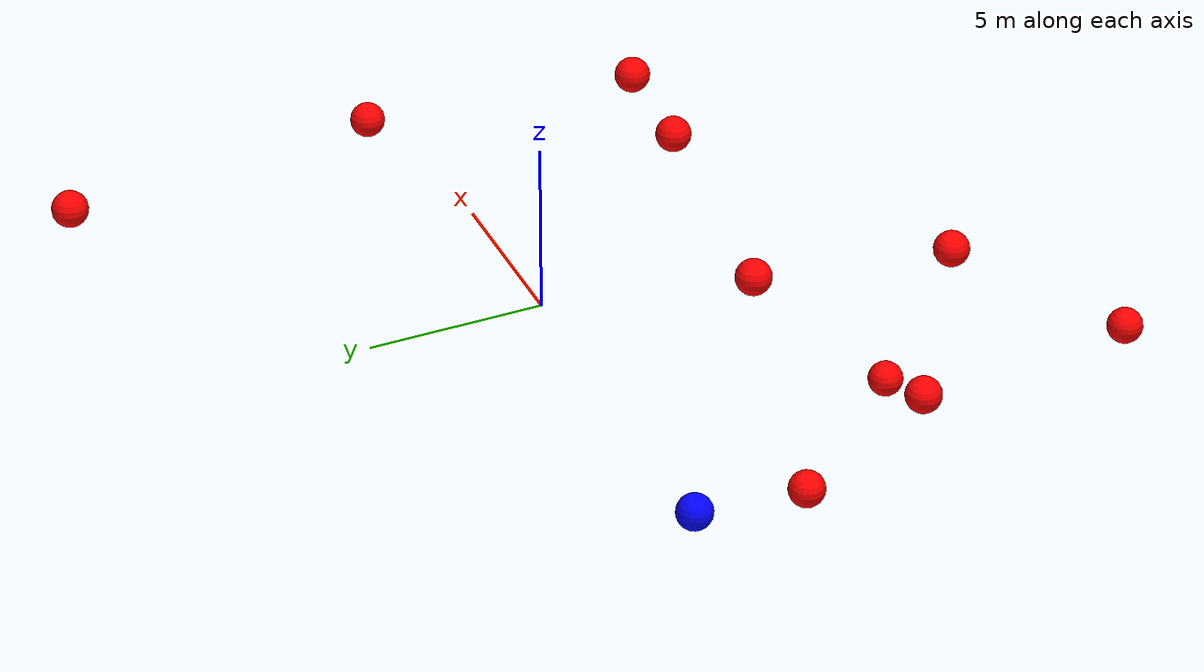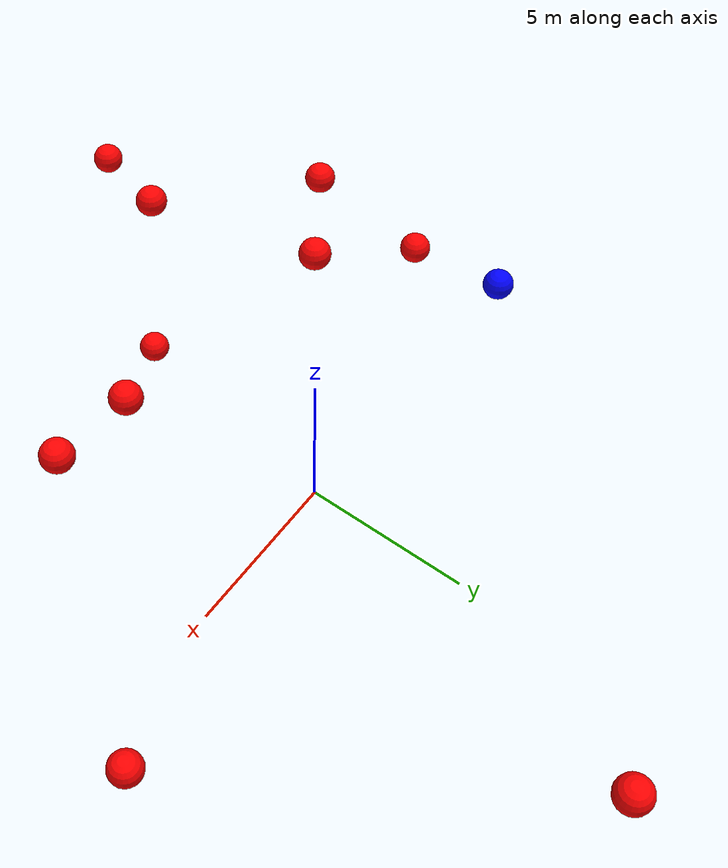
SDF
<?xml version="1.0" ?>
<sdf version="1.8">
    <world name="3d_world">
        <physics name="1ms" type="ode">
            <max_step_size>0.001</max_step_size>
            <real_time_factor>1.0</real_time_factor>
            <real_time_update_rate>1000.0</real_time_update_rate>
        </physics>
        <gravity>0 0 0</gravity>

        <plugin
            filename="gz-sim-physics-system"
            name="gz::sim::v8::systems::Physics">
        </plugin>
        <plugin
            filename="libignition-gazebo-user-commands-system.so"
            name="ignition::gazebo::systems::UserCommands">
        </plugin>
        <plugin
            filename="gz-sim-scene-broadcaster-system"
            name="gz::sim::systems::SceneBroadcaster">
        </plugin>
        <plugin
            filename="gz-sim-sensors-system"
            name="gz::sim::systems::Sensors">
            <render_engine>ogre2</render_engine>
        </plugin>

        <light type="directional" name="sun">
            <cast_shadows>true</cast_shadows>
            <pose>0 0 10 0 0 0</pose>
            <diffuse>0.8 0.8 0.8 1</diffuse>
            <specular>0.2 0.2 0.2 1</specular>
            <attenuation>
                <range>1000</range>
                <constant>0.9</constant>
                <linear>0.01</linear>
                <quadratic>0.001</quadratic>
            </attenuation>
            <direction>-0.5 0.1 -0.9</direction>
        </light>

        <!-- AGENTE -->
        <model name='agente' canonical_link='chassis'>
            <pose relative_to='world'>-10.0 0 0.0 0 0 0</pose>
            <link name='chassis'>
                <pose relative_to='__model__'>0.0 0 0.0 0 0 0</pose>
                <inertial>
                    <mass>1.14395</mass>
                    <inertia>
                        <ixx>0.095329</ixx>
                        <ixy>0</ixy>
                        <ixz>0</ixz>
                        <iyy>0.381317</iyy>
                        <iyz>0</iyz>
                        <izz>0.476646</izz>
                    </inertia>
                </inertial>
                <visual name='visual'>
                    <geometry>
                        <sphere>
                            <radius>0.5</radius>
                        </sphere>
                    </geometry>
                    <material>
                        <ambient>0.0 0.0 1.0 1</ambient>
                        <diffuse>0.0 0.0 1.0 1</diffuse>
                        <specular>0.0 0.0 1.0 1</specular>
                    </material>
                </visual>
                <collision name='collision'>
                    <geometry>
                        <sphere>
                            <radius>0.5</radius>
                        </sphere>
                    </geometry>
                </collision>
                <enable_gravity>false</enable_gravity>
            </link>

            <link name='lidar_link'>
                <pose relative_to='chassis'>0.0 0 0.1 0 0 0</pose>
                <inertial>
                    <mass>0.1</mass>
                    <inertia>
                        <ixx>0.000166667</ixx>
                        <iyy>0.000166667</iyy>
                        <izz>0.000166667</izz>
                    </inertia>
                </inertial>
                <collision name='collision'>
                    <geometry>
                        <cylinder>
                            <radius>0.05</radius>
                            <length>0.1</length>
                        </cylinder>
                    </geometry>
                </collision>
                <visual name='visual'>
                    <geometry>
                        <cylinder>
                            <radius>0.05</radius>
                            <length>0.1</length>
                        </cylinder>
                    </geometry>
                    <material>
                        <ambient>0.0 1.0 0.0 1</ambient>
                        <diffuse>0.0 1.0 0.0 1</diffuse>
                        <specular>0.0 1.0 0.0 1</specular>
                    </material>
                </visual>
                <sensor name="lidar" type="gpu_lidar">
                    <topic>scan</topic>
                    <update_rate>10</update_rate>
                    <lidar>
                        <scan>
                            <horizontal>
                                <samples>5000</samples>
                                <resolution>1</resolution>
                                <min_angle>-3.14159</min_angle>
                                <max_angle>3.14159</max_angle>
                            </horizontal>
                        </scan>
                        <range>
                            <min>0.1</min>
                            <max>10.0</max>
                            <resolution>0.01</resolution>
                        </range>
                    </lidar>
                    <visualize>true</visualize>
                    <always_on>true</always_on>
                    <update_rate>10</update_rate>
                    <pose_frame>lidar</pose_frame>
                </sensor>
                <enable_gravity>false</enable_gravity>
            </link>

            <joint name="lidar_joint" type="fixed">
                <parent>chassis</parent>
                <child>lidar_link</child>
            </joint>

            <plugin
                filename="ignition-gazebo-joint-state-publisher-system"
                name="ignition::gazebo::systems::JointStatePublisher">
            </plugin>
            <plugin
                filename="ignition-gazebo-odometry-publisher-system"
                name="ignition::gazebo::systems::OdometryPublisher">
                <dimensions>3</dimensions>
            </plugin>
            <plugin
                filename="ignition-gazebo-velocity-control-system"
                name="ignition::gazebo::systems::VelocityControl">
                <initial_linear>0.0 0 0</initial_linear>
                <initial_angular>0 0 0.0</initial_angular>
            </plugin>
            <plugin
                filename="libignition-gazebo-pose-publisher-system.so"
                name="ignition::gazebo::systems::PosePublisher">
                <topic>/agente/pose</topic>
                <frame_id>agente</frame_id>
                <update_rate>30</update_rate>
            </plugin>
        </model>

        <!-- OBSTACLE 1 -->
        <model name='obstacle_1' canonical_link='obstacle'>
            <static>false</static>
            <pose relative_to='world'>4.06 11.81 3.82 0 0 0</pose>
            <link name='obstacle'>
                <pose relative_to='__model__'>0.0 0 0.0 0 0 0</pose>
                <visual name='visual'>
                    <geometry>
                        <sphere>
                            <radius>0.50</radius>
                        </sphere>
                    </geometry>
                    <material>
                        <ambient>1.0 0.0 0.0 1</ambient>
                        <diffuse>1.0 0.0 0.0 1</diffuse>
                        <specular>1.0 0.0 0.0 1</specular>
                    </material>
                </visual>
                <collision name='collision'>
                    <geometry>
                        <sphere>
                            <radius>0.50</radius>
                        </sphere>
                    </geometry>
                </collision>
                <enable_gravity>false</enable_gravity>
            </link>

            <plugin
                filename="ignition-gazebo-velocity-control-system"
                name="ignition::gazebo::systems::VelocityControl">
                <initial_linear>0.27 -1.87 -0.61</initial_linear>
                <initial_angular>0 0 0</initial_angular>
            </plugin>

            <plugin
                filename="ignition-gazebo-odometry-publisher-system"
                name="ignition::gazebo::systems::OdometryPublisher">
                <dimensions>3</dimensions>
            </plugin>
        </model>

        <!-- OBSTACLE 2 -->
        <model name='obstacle_2' canonical_link='obstacle'>
            <static>false</static>
            <pose relative_to='world'>-3.01 -9.09 -3.06 0 0 0</pose>
            <link name='obstacle'>
                <pose relative_to='__model__'>0.0 0 0.0 0 0 0</pose>
                <visual name='visual'>
                    <geometry>
                        <sphere>
                            <radius>0.50</radius>
                        </sphere>
                    </geometry>
                    <material>
                        <ambient>1.0 0.0 0.0 1</ambient>
                        <diffuse>1.0 0.0 0.0 1</diffuse>
                        <specular>1.0 0.0 0.0 1</specular>
                    </material>
                </visual>
                <collision name='collision'>
                    <geometry>
                        <sphere>
                            <radius>0.50</radius>
                        </sphere>
                    </geometry>
                </collision>
                <enable_gravity>false</enable_gravity>
            </link>

            <plugin
                filename="ignition-gazebo-velocity-control-system"
                name="ignition::gazebo::systems::VelocityControl">
                <initial_linear>1.05 1.61 0.54</initial_linear>
                <initial_angular>0 0 0</initial_angular>
            </plugin>

            <plugin
                filename="ignition-gazebo-odometry-publisher-system"
                name="ignition::gazebo::systems::OdometryPublisher">
                <dimensions>3</dimensions>
            </plugin>
        </model>

        <!-- OBSTACLE 3 -->
        <model name='obstacle_3' canonical_link='obstacle'>
            <static>false</static>
            <pose relative_to='world'>9.68 1.36 0.76 0 0 0</pose>
            <link name='obstacle'>
                <pose relative_to='__model__'>0.0 0 0.0 0 0 0</pose>
                <visual name='visual'>
                    <geometry>
                        <sphere>
                            <radius>0.50</radius>
                        </sphere>
                    </geometry>
                    <material>
                        <ambient>1.0 0.0 0.0 1</ambient>
                        <diffuse>1.0 0.0 0.0 1</diffuse>
                        <specular>1.0 0.0 0.0 1</specular>
                    </material>
                </visual>
                <collision name='collision'>
                    <geometry>
                        <sphere>
                            <radius>0.50</radius>
                        </sphere>
                    </geometry>
                </collision>
                <enable_gravity>false</enable_gravity>
            </link>

            <plugin
                filename="ignition-gazebo-velocity-control-system"
                name="ignition::gazebo::systems::VelocityControl">
                <initial_linear>-1.98 -0.23 -0.13</initial_linear>
                <initial_angular>0 0 0</initial_angular>
            </plugin>

            <plugin
                filename="ignition-gazebo-odometry-publisher-system"
                name="ignition::gazebo::systems::OdometryPublisher">
                <dimensions>3</dimensions>
            </plugin>
        </model>

        <!-- OBSTACLE 4 -->
        <model name='obstacle_4' canonical_link='obstacle'>
            <static>false</static>
            <pose relative_to='world'>2.19 -4.90 3.03 0 0 0</pose>
            <link name='obstacle'>
                <pose relative_to='__model__'>0.0 0 0.0 0 0 0</pose>
                <visual name='visual'>
                    <geometry>
                        <sphere>
                            <radius>0.50</radius>
                        </sphere>
                    </geometry>
                    <material>
                        <ambient>1.0 0.0 0.0 1</ambient>
                        <diffuse>1.0 0.0 0.0 1</diffuse>
                        <specular>1.0 0.0 0.0 1</specular>
                    </material>
                </visual>
                <collision name='collision'>
                    <geometry>
                        <sphere>
                            <radius>0.50</radius>
                        </sphere>
                    </geometry>
                </collision>
                <enable_gravity>false</enable_gravity>
            </link>

            <plugin
                filename="ignition-gazebo-velocity-control-system"
                name="ignition::gazebo::systems::VelocityControl">
                <initial_linear>-0.98 1.40 -0.87</initial_linear>
                <initial_angular>0 0 0</initial_angular>
            </plugin>

            <plugin
                filename="ignition-gazebo-odometry-publisher-system"
                name="ignition::gazebo::systems::OdometryPublisher">
                <dimensions>3</dimensions>
            </plugin>
        </model>

        <!-- OBSTACLE 5 -->
        <model name='obstacle_5' canonical_link='obstacle'>
            <static>false</static>
            <pose relative_to='world'>-9.39 -6.77 1.30 0 0 0</pose>
            <link name='obstacle'>
                <pose relative_to='__model__'>0.0 0 0.0 0 0 0</pose>
                <visual name='visual'>
                    <geometry>
                        <sphere>
                            <radius>0.50</radius>
                        </sphere>
                    </geometry>
                    <material>
                        <ambient>1.0 0.0 0.0 1</ambient>
                        <diffuse>1.0 0.0 0.0 1</diffuse>
                        <specular>1.0 0.0 0.0 1</specular>
                    </material>
                </visual>
                <collision name='collision'>
                    <geometry>
                        <sphere>
                            <radius>0.50</radius>
                        </sphere>
                    </geometry>
                </collision>
                <enable_gravity>false</enable_gravity>
            </link>

            <plugin
                filename="ignition-gazebo-velocity-control-system"
                name="ignition::gazebo::systems::VelocityControl">
                <initial_linear>1.39 1.41 -0.27</initial_linear>
                <initial_angular>0 0 0</initial_angular>
            </plugin>

            <plugin
                filename="ignition-gazebo-odometry-publisher-system"
                name="ignition::gazebo::systems::OdometryPublisher">
                <dimensions>3</dimensions>
            </plugin>
        </model>

        <!-- OBSTACLE 6 -->
        <model name='obstacle_6' canonical_link='obstacle'>
            <static>false</static>
            <pose relative_to='world'>-4.67 -10.01 2.07 0 0 0</pose>
            <link name='obstacle'>
                <pose relative_to='__model__'>0.0 0 0.0 0 0 0</pose>
                <visual name='visual'>
                    <geometry>
                        <sphere>
                            <radius>0.50</radius>
                        </sphere>
                    </geometry>
                    <material>
                        <ambient>1.0 0.0 0.0 1</ambient>
                        <diffuse>1.0 0.0 0.0 1</diffuse>
                        <specular>1.0 0.0 0.0 1</specular>
                    </material>
                </visual>
                <collision name='collision'>
                    <geometry>
                        <sphere>
                            <radius>0.50</radius>
                        </sphere>
                    </geometry>
                </collision>
                <enable_gravity>false</enable_gravity>
            </link>

            <plugin
                filename="ignition-gazebo-velocity-control-system"
                name="ignition::gazebo::systems::VelocityControl">
                <initial_linear>1.19 1.58 -0.33</initial_linear>
                <initial_angular>0 0 0</initial_angular>
            </plugin>

            <plugin
                filename="ignition-gazebo-odometry-publisher-system"
                name="ignition::gazebo::systems::OdometryPublisher">
                <dimensions>3</dimensions>
            </plugin>
        </model>

        <!-- OBSTACLE 7 -->
        <model name='obstacle_7' canonical_link='obstacle'>
            <static>false</static>
            <pose relative_to='world'>4.91 -4.86 3.43 0 0 0</pose>
            <link name='obstacle'>
                <pose relative_to='__model__'>0.0 0 0.0 0 0 0</pose>
                <visual name='visual'>
                    <geometry>
                        <sphere>
                            <radius>0.50</radius>
                        </sphere>
                    </geometry>
                    <material>
                        <ambient>1.0 0.0 0.0 1</ambient>
                        <diffuse>1.0 0.0 0.0 1</diffuse>
                        <specular>1.0 0.0 0.0 1</specular>
                    </material>
                </visual>
                <collision name='collision'>
                    <geometry>
                        <sphere>
                            <radius>0.50</radius>
                        </sphere>
                    </geometry>
                </collision>
                <enable_gravity>false</enable_gravity>
            </link>

            <plugin
                filename="ignition-gazebo-velocity-control-system"
                name="ignition::gazebo::systems::VelocityControl">
                <initial_linear>-1.33 1.22 -0.86</initial_linear>
                <initial_angular>0 0 0</initial_angular>
            </plugin>

            <plugin
                filename="ignition-gazebo-odometry-publisher-system"
                name="ignition::gazebo::systems::OdometryPublisher">
                <dimensions>3</dimensions>
            </plugin>
        </model>

        <!-- OBSTACLE 8 -->
        <model name='obstacle_8' canonical_link='obstacle'>
            <static>false</static>
            <pose relative_to='world'>-9.94 -3.20 -0.28 0 0 0</pose>
            <link name='obstacle'>
                <pose relative_to='__model__'>0.0 0 0.0 0 0 0</pose>
                <visual name='visual'>
                    <geometry>
                        <sphere>
                            <radius>0.50</radius>
                        </sphere>
                    </geometry>
                    <material>
                        <ambient>1.0 0.0 0.0 1</ambient>
                        <diffuse>1.0 0.0 0.0 1</diffuse>
                        <specular>1.0 0.0 0.0 1</specular>
                    </material>
                </visual>
                <collision name='collision'>
                    <geometry>
                        <sphere>
                            <radius>0.50</radius>
                        </sphere>
                    </geometry>
                </collision>
                <enable_gravity>false</enable_gravity>
            </link>

            <plugin
                filename="ignition-gazebo-velocity-control-system"
                name="ignition::gazebo::systems::VelocityControl">
                <initial_linear>1.72 1.02 0.09</initial_linear>
                <initial_angular>0 0 0</initial_angular>
            </plugin>

            <plugin
                filename="ignition-gazebo-odometry-publisher-system"
                name="ignition::gazebo::systems::OdometryPublisher">
                <dimensions>3</dimensions>
            </plugin>
        </model>

        <!-- OBSTACLE 9 -->
        <model name='obstacle_9' canonical_link='obstacle'>
            <static>false</static>
            <pose relative_to='world'>-6.92 -14.25 -0.19 0 0 0</pose>
            <link name='obstacle'>
                <pose relative_to='__model__'>0.0 0 0.0 0 0 0</pose>
                <visual name='visual'>
                    <geometry>
                        <sphere>
                            <radius>0.50</radius>
                        </sphere>
                    </geometry>
                    <material>
                        <ambient>1.0 0.0 0.0 1</ambient>
                        <diffuse>1.0 0.0 0.0 1</diffuse>
                        <specular>1.0 0.0 0.0 1</specular>
                    </material>
                </visual>
                <collision name='collision'>
                    <geometry>
                        <sphere>
                            <radius>0.50</radius>
                        </sphere>
                    </geometry>
                </collision>
                <enable_gravity>false</enable_gravity>
            </link>

            <plugin
                filename="ignition-gazebo-velocity-control-system"
                name="ignition::gazebo::systems::VelocityControl">
                <initial_linear>1.39 1.44 0.02</initial_linear>
                <initial_angular>0 0 0</initial_angular>
            </plugin>

            <plugin
                filename="ignition-gazebo-odometry-publisher-system"
                name="ignition::gazebo::systems::OdometryPublisher">
                <dimensions>3</dimensions>
            </plugin>
        </model>

        <!-- OBSTACLE 10 -->
        <model name='obstacle_10' canonical_link='obstacle'>
            <static>false</static>
            <pose relative_to='world'>-5.18 -3.86 3.14 0 0 0</pose>
            <link name='obstacle'>
                <pose relative_to='__model__'>0.0 0 0.0 0 0 0</pose>
                <visual name='visual'>
                    <geometry>
                        <sphere>
                            <radius>0.50</radius>
                        </sphere>
                    </geometry>
                    <material>
                        <ambient>1.0 0.0 0.0 1</ambient>
                        <diffuse>1.0 0.0 0.0 1</diffuse>
                        <specular>1.0 0.0 0.0 1</specular>
                    </material>
                </visual>
                <collision name='collision'>
                    <geometry>
                        <sphere>
                            <radius>0.50</radius>
                        </sphere>
                    </geometry>
                </collision>
                <enable_gravity>false</enable_gravity>
            </link>

            <plugin
                filename="ignition-gazebo-velocity-control-system"
                name="ignition::gazebo::systems::VelocityControl">
                <initial_linear>1.34 0.93 -0.76</initial_linear>
                <initial_angular>0 0 0</initial_angular>
            </plugin>

            <plugin
                filename="ignition-gazebo-odometry-publisher-system"
                name="ignition::gazebo::systems::OdometryPublisher">
                <dimensions>3</dimensions>
            </plugin>
        </model>

    </world>
</sdf>
